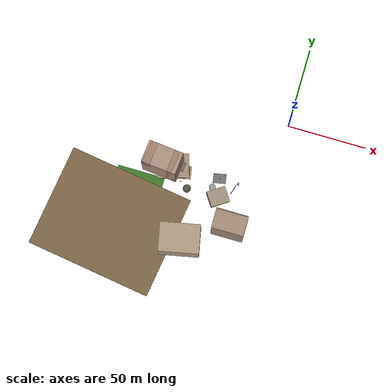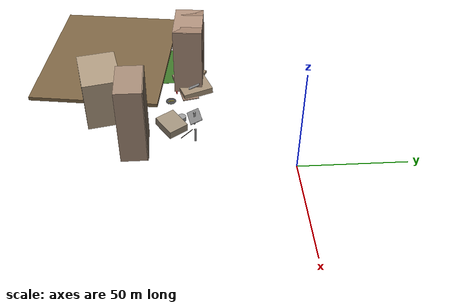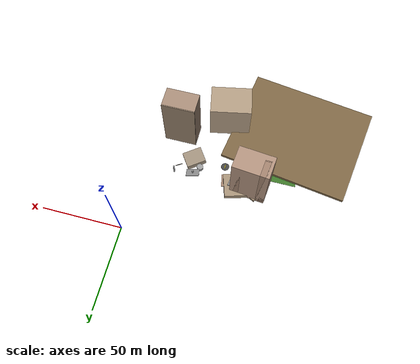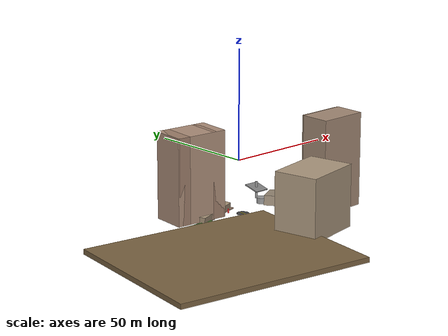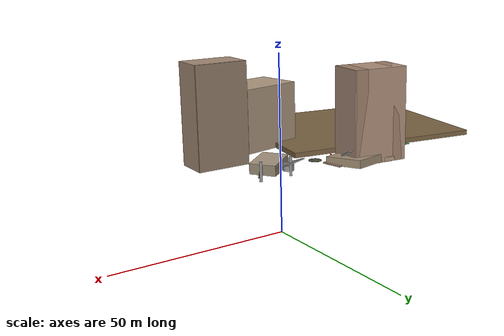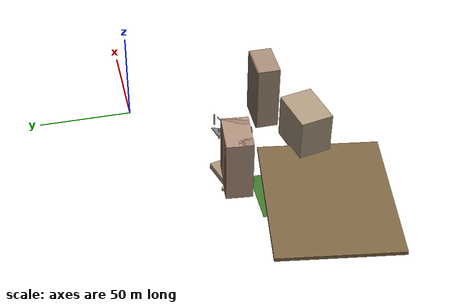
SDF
<sdf version="1.9">
 <world name="p110_world">
  <model name="tmound_sw">
   <static>true</static>
   <pose>-90 -88 1.0 0 0 -0.15</pose>
   <link name="link">
    <collision name="c"><geometry><box><size>80 65 2.0</size></box></geometry></collision>
    <visual name="v">
     <geometry><box><size>80 65 2.0</size></box></geometry>
     <material><ambient>0.40 0.33 0.22 1</ambient><diffuse>0.48 0.39 0.26 1</diffuse></material>
    </visual>
   </link>
  </model>
  <model name="grass_park_sw">
   <static>true</static>
   <pose>-80 -65 0.05 0 0 0</pose>
   <link name="link">
    <visual name="v">
     <geometry><box><size>30 25 0.06</size></box></geometry>
     <material><ambient>0.20 0.38 0.13 1</ambient><diffuse>0.24 0.46 0.16 1</diffuse></material>
    </visual>
   </link>
  </model>
  <model name="residential_1">
   <static>true</static>
   <pose>-68 -45 17.5 0 0 -0.1</pose>
   <link name="link">
    <collision name="c"><geometry><box><size>22 14 35</size></box></geometry></collision>
    <visual name="main">
     <geometry><box><size>22 14 35</size></box></geometry>
     <material>
      <ambient>0.58 0.48 0.42 1</ambient>
      <diffuse>0.68 0.56 0.48 1</diffuse>
      <specular>0.12 0.10 0.10 1</specular>
     </material>
    </visual>
    <visual name="unit_l">
     <pose>-8 0 0 0 0 0</pose>
     <geometry><box><size>5 14 35</size></box></geometry>
     <material><ambient>0.52 0.44 0.38 1</ambient><diffuse>0.62 0.50 0.42 1</diffuse></material>
    </visual>
    <visual name="unit_r">
     <pose>8 0 0 0 0 0</pose>
     <geometry><box><size>5 14 35</size></box></geometry>
     <material><ambient>0.52 0.44 0.38 1</ambient><diffuse>0.62 0.50 0.42 1</diffuse></material>
    </visual>
   </link>
  </model>
  <model name="apartment_s">
   <static>true</static>
   <pose>-18 -72 19 0 0 0</pose>
   <link name="link">
    <collision name="c"><geometry><box><size>20 12 38</size></box></geometry></collision>
    <visual name="main">
     <geometry><box><size>20 12 38</size></box></geometry>
     <material>
      <ambient>0.54 0.46 0.40 1</ambient>
      <diffuse>0.64 0.54 0.46 1</diffuse>
      <specular>0.10 0.10 0.10 1</specular>
     </material>
    </visual>
    <visual name="balconies">
     <pose>0 6.2 0 0 0 0</pose>
     <geometry><box><size>20 0.6 38</size></box></geometry>
     <material><ambient>0.48 0.42 0.36 1</ambient><diffuse>0.56 0.48 0.40 1</diffuse></material>
    </visual>
   </link>
  </model>
  <model name="community_s">
   <static>true</static>
   <pose>-45 -88 12.5 0 0 0.2</pose>
   <link name="link">
    <collision name="c"><geometry><box><size>25 18 25</size></box></geometry></collision>
    <visual name="main">
     <geometry><box><size>25 18 25</size></box></geometry>
     <material>
      <ambient>0.58 0.52 0.44 1</ambient>
      <diffuse>0.68 0.60 0.50 1</diffuse>
      <specular>0.10 0.10 0.08 1</specular>
     </material>
    </visual>
   </link>
  </model>
  <model name="col2_slab1">
   <static>true</static>
   <pose>-62 -44 3.5 0.50 0 -0.1</pose>
   <link name="link">
    <collision name="c"><geometry><box><size>14 9 0.35</size></box></geometry></collision>
    <visual name="v">
     <geometry><box><size>14 9 0.35</size></box></geometry>
     <material><ambient>0.45 0.45 0.45 1</ambient><diffuse>0.54 0.54 0.54 1</diffuse></material>
    </visual>
   </link>
  </model>
  <model name="col2_slab2">
   <static>true</static>
   <pose>-60 -42 1.6 0.30 0.05 -0.15</pose>
   <link name="link">
    <collision name="c"><geometry><box><size>12 8 0.35</size></box></geometry></collision>
    <visual name="v">
     <geometry><box><size>12 8 0.35</size></box></geometry>
     <material><ambient>0.43 0.43 0.43 1</ambient><diffuse>0.52 0.52 0.52 1</diffuse></material>
    </visual>
   </link>
  </model>
  <model name="col2_wall_flat">
   <static>true</static>
   <pose>-55 -46 0.6 1.5708 0 0.2</pose>
   <link name="link">
    <collision name="c"><geometry><box><size>10 0.5 8</size></box></geometry></collision>
    <visual name="v">
     <geometry><box><size>10 0.5 8</size></box></geometry>
     <material><ambient>0.54 0.44 0.38 1</ambient><diffuse>0.64 0.52 0.44 1</diffuse></material>
    </visual>
   </link>
  </model>
  <model name="col2_rubble">
   <static>true</static>
   <pose>-62 -44 1.5 0.06 -0.04 0.3</pose>
   <link name="link">
    <collision name="c"><geometry><box><size>20 15 3.0</size></box></geometry></collision>
    <visual name="v">
     <geometry><box><size>20 15 3.0</size></box></geometry>
     <material><ambient>0.56 0.50 0.42 1</ambient><diffuse>0.64 0.56 0.46 1</diffuse></material>
    </visual>
   </link>
  </model>
  <model name="col2_rubble_b">
   <static>true</static>
   <pose>-70 -42 0.8 0.05 0.05 -0.5</pose>
   <link name="link">
    <collision name="c"><geometry><box><size>10 8 1.5</size></box></geometry></collision>
    <visual name="v">
     <geometry><box><size>10 8 1.5</size></box></geometry>
     <material><ambient>0.54 0.48 0.40 1</ambient><diffuse>0.62 0.54 0.44 1</diffuse></material>
    </visual>
   </link>
  </model>
  <model name="rubble_pile_2">
   <static>true</static>
   <pose>-30 -55 2.0 0 0.1 0.6</pose>
   <link name="link">
    <collision name="c"><geometry><box><size>12 10 4</size></box></geometry></collision>
    <visual name="v">
     <geometry><box><size>12 10 4</size></box></geometry>
     <material><ambient>0.54 0.50 0.44 1</ambient><diffuse>0.62 0.56 0.48 1</diffuse></material>
    </visual>
   </link>
  </model>
  <model name="col_cyl_1">
   <static>true</static>
   <pose>-35 -50 1.2 0 0 0</pose>
   <link name="link">
    <collision name="c">
     <geometry><cylinder><radius>2.0</radius><length>2.4</length></cylinder></geometry>
    </collision>
    <visual name="v">
     <geometry><cylinder><radius>2.0</radius><length>2.4</length></cylinder></geometry>
     <material><ambient>0.52 0.52 0.52 1</ambient><diffuse>0.60 0.60 0.60 1</diffuse></material>
    </visual>
   </link>
  </model>
  <model name="beam_3">
   <static>true</static>
   <pose>-22 -48 2.5 0 0.7 1.2</pose>
   <link name="link">
    <visual name="v">
     <geometry><box><size>0.3 0.3 9</size></box></geometry>
     <material>
      <ambient>0.28 0.26 0.24 1</ambient>
      <diffuse>0.36 0.33 0.30 1</diffuse>
      <specular>0.45 0.42 0.38 1</specular>
     </material>
    </visual>
   </link>
  </model>
  <model name="rt5">
   <static>true</static>
   <pose>-55 -52 1.5 0 0 0</pose>
   <link name="link">
    <collision name="c">
     <geometry><cylinder><radius>0.3</radius><length>1.7</length></cylinder></geometry>
    </collision>
    <visual name="v">
     <geometry><cylinder><radius>0.3</radius><length>1.7</length></cylinder></geometry>
     <material><ambient>1.0 0.2 0.2 1</ambient><diffuse>1.0 0.2 0.2 1</diffuse></material>
    </visual>
   </link>
  </model>
  <model name="goal_zone">
   <static>true</static>
   <pose>-80 -80 0.05 0 0 0</pose>
   <link name="link">
    <visual name="v">
     <geometry><cylinder><radius>3</radius><length>0.1</length></cylinder></geometry>
     <material><ambient>0.2 1.0 0.2 0.5</ambient><diffuse>0.2 1.0 0.2 0.5</diffuse></material>
    </visual>
   </link>
  </model>
  <model name="prk_col_3">
   <static>true</static>
   <pose>-32 -44 3.5 0 0 0</pose>
   <link name="link">
    <collision name="c">
     <geometry><cylinder><radius>0.5</radius><length>7</length></cylinder></geometry>
    </collision>
    <visual name="v">
     <geometry><cylinder><radius>0.5</radius><length>7</length></cylinder></geometry>
     <material><ambient>0.52 0.52 0.52 1</ambient><diffuse>0.60 0.60 0.60 1</diffuse></material>
    </visual>
   </link>
  </model>
  <model name="prk_col_4">
   <static>true</static>
   <pose>-20 -44 3.5 0 0 0</pose>
   <link name="link">
    <collision name="c">
     <geometry><cylinder><radius>0.5</radius><length>7</length></cylinder></geometry>
    </collision>
    <visual name="v">
     <geometry><cylinder><radius>0.5</radius><length>7</length></cylinder></geometry>
     <material><ambient>0.52 0.52 0.52 1</ambient><diffuse>0.60 0.60 0.60 1</diffuse></material>
    </visual>
   </link>
  </model>
  <model name="prk_roof_fallen">
   <static>true</static>
   <pose>-32 -44 4.5 0.35 0.1 0.2</pose>
   <link name="link">
    <collision name="c"><geometry><box><size>8 6 0.4</size></box></geometry></collision>
    <visual name="v">
     <geometry><box><size>8 6 0.4</size></box></geometry>
     <material><ambient>0.44 0.44 0.44 1</ambient><diffuse>0.52 0.52 0.52 1</diffuse></material>
    </visual>
   </link>
  </model>
  <model name="lz5">
   <static>true</static>
   <pose>-50 -55 0.06 0 0 0</pose>
   <link name="link">
    <visual name="pad">
     <geometry><cylinder><radius>2.5</radius><length>0.10</length></cylinder></geometry>
     <material><ambient>0.20 0.20 0.20 1</ambient><diffuse>0.26 0.26 0.26 1</diffuse></material>
    </visual>
    <visual name="h">
     <pose>0 0 0.06 0 0 0</pose>
     <geometry><box><size>0.4 2.8 0.02</size></box></geometry>
     <material><ambient>0.95 0.85 0.05 1</ambient><diffuse>0.95 0.85 0.05 1</diffuse></material>
    </visual>
   </link>
  </model>
 </world>
</sdf>
